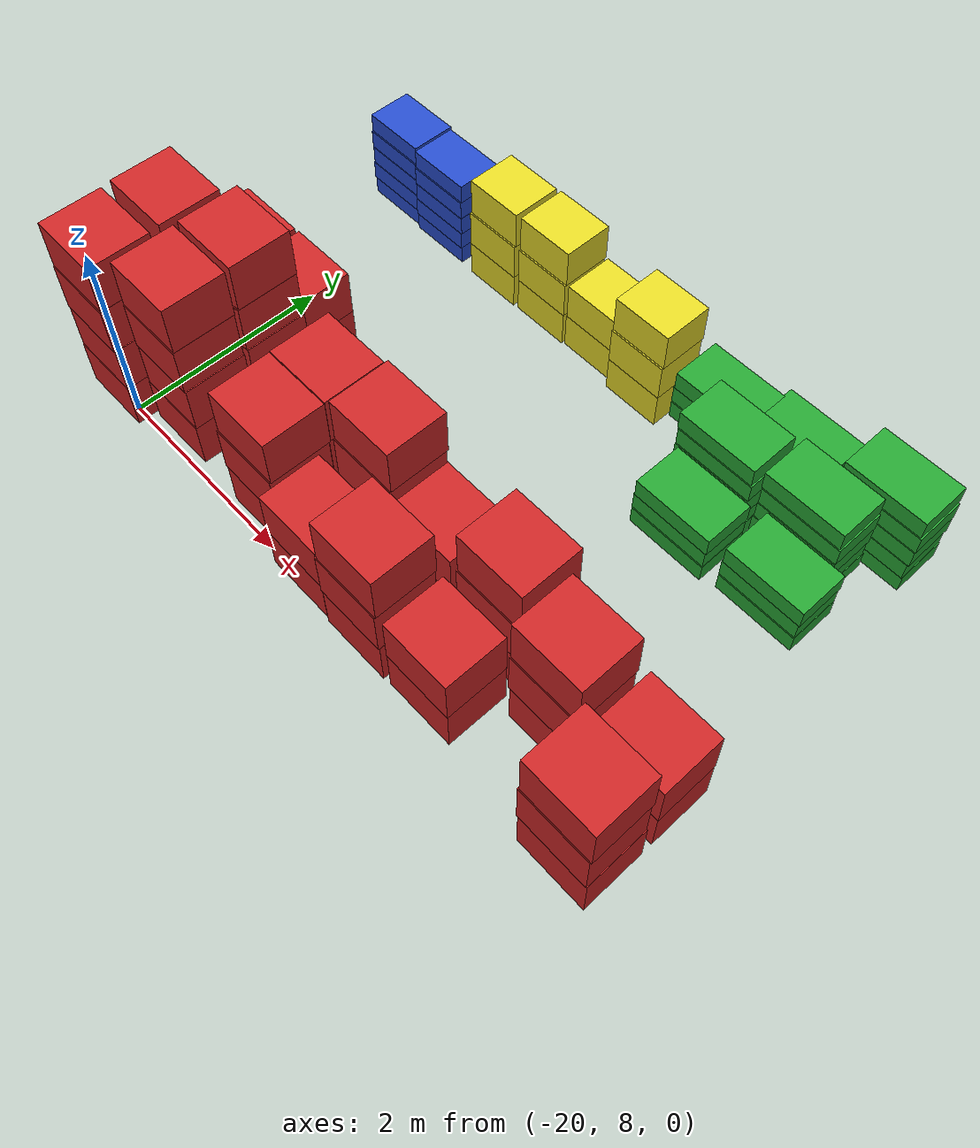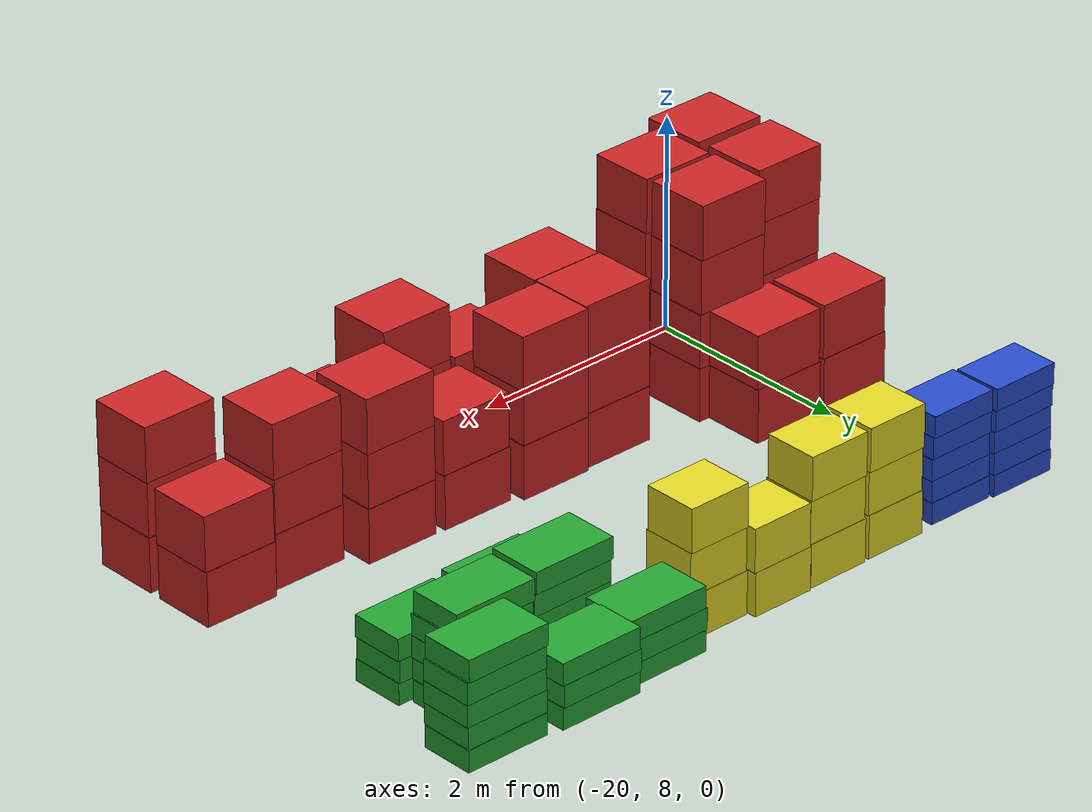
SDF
<sdf version="1.4">
 <model name="factory_baggage_group_A">
  <model name="baggage_A_x3_4">
   <model name="baggage_A_0">
    <static>1</static>
    <link name="link">
     <collision name="collision"><geometry><box><size>0.7 0.6 0.5</size></box></geometry></collision>
     <visual name="visual">
      <geometry><box><size>0.7 0.6 0.5</size></box></geometry>
      <material>
       <script><uri>file://media/materials/scripts/gazebo.material</uri><name>Gazebo/Red</name></script>
      </material>
     </visual>
    </link>
    <pose>0 0 0.25 0 -0 0</pose>
   </model>
   <model name="baggage_A_1">
    <static>1</static>
    <link name="link">
     <collision name="collision"><geometry><box><size>0.7 0.6 0.5</size></box></geometry></collision>
     <visual name="visual">
      <geometry><box><size>0.7 0.6 0.5</size></box></geometry>
      <material>
       <script><uri>file://media/materials/scripts/gazebo.material</uri><name>Gazebo/Red</name></script>
      </material>
     </visual>
    </link>
    <pose>-0.006 -0.0077 0.75 0 -0 0</pose>
   </model>
   <model name="baggage_A_2">
    <static>1</static>
    <link name="link">
     <collision name="collision"><geometry><box><size>0.7 0.6 0.5</size></box></geometry></collision>
     <visual name="visual">
      <geometry><box><size>0.7 0.6 0.5</size></box></geometry>
      <material>
       <script><uri>file://media/materials/scripts/gazebo.material</uri><name>Gazebo/Red</name></script>
      </material>
     </visual>
    </link>
    <pose>0.0045 0.0005 1.25 0 -0 0</pose>
   </model>
   <pose>-14.4326 8.09505 0 0 -0 0</pose>
  </model>
  <model name="baggage_A_x3_5">
   <model name="baggage_A_0">
    <static>1</static>
    <link name="link">
     <collision name="collision"><geometry><box><size>0.7 0.6 0.5</size></box></geometry></collision>
     <visual name="visual">
      <geometry><box><size>0.7 0.6 0.5</size></box></geometry>
      <material>
       <script><uri>file://media/materials/scripts/gazebo.material</uri><name>Gazebo/Red</name></script>
      </material>
     </visual>
    </link>
    <pose>0 0 0.25 0 -0 0</pose>
   </model>
   <model name="baggage_A_1">
    <static>1</static>
    <link name="link">
     <collision name="collision"><geometry><box><size>0.7 0.6 0.5</size></box></geometry></collision>
     <visual name="visual">
      <geometry><box><size>0.7 0.6 0.5</size></box></geometry>
      <material>
       <script><uri>file://media/materials/scripts/gazebo.material</uri><name>Gazebo/Red</name></script>
      </material>
     </visual>
    </link>
    <pose>-0.006 -0.0077 0.75 0 -0 0</pose>
   </model>
   <model name="baggage_A_2">
    <static>1</static>
    <link name="link">
     <collision name="collision"><geometry><box><size>0.7 0.6 0.5</size></box></geometry></collision>
     <visual name="visual">
      <geometry><box><size>0.7 0.6 0.5</size></box></geometry>
      <material>
       <script><uri>file://media/materials/scripts/gazebo.material</uri><name>Gazebo/Red</name></script>
      </material>
     </visual>
    </link>
    <pose>0.0045 0.0005 1.25 0 -0 0</pose>
   </model>
   <pose>-15.1941 8.72762 0 0 -0 0</pose>
  </model>
  <model name="baggage_A_x2_5">
   <model name="baggage_A_0">
    <static>1</static>
    <link name="link">
     <collision name="collision"><geometry><box><size>0.7 0.6 0.5</size></box></geometry></collision>
     <visual name="visual">
      <geometry><box><size>0.7 0.6 0.5</size></box></geometry>
      <material>
       <script><uri>file://media/materials/scripts/gazebo.material</uri><name>Gazebo/Red</name></script>
      </material>
     </visual>
    </link>
    <pose>0 0 0.25 0 -0 0</pose>
   </model>
   <model name="baggage_A_1">
    <static>1</static>
    <link name="link">
     <collision name="collision"><geometry><box><size>0.7 0.6 0.5</size></box></geometry></collision>
     <visual name="visual">
      <geometry><box><size>0.7 0.6 0.5</size></box></geometry>
      <material>
       <script><uri>file://media/materials/scripts/gazebo.material</uri><name>Gazebo/Red</name></script>
      </material>
     </visual>
    </link>
    <pose>0.0063 -0.0062 0.75 0 -0 0</pose>
   </model>
   <pose>-14.4327 8.8006 0 0 -0 0</pose>
  </model>
  <model name="baggage_A_x4_5">
   <model name="baggage_A_0">
    <static>1</static>
    <link name="link">
     <collision name="collision"><geometry><box><size>0.7 0.6 0.5</size></box></geometry></collision>
     <visual name="visual">
      <geometry><box><size>0.7 0.6 0.5</size></box></geometry>
      <material>
       <script><uri>file://media/materials/scripts/gazebo.material</uri><name>Gazebo/Red</name></script>
      </material>
     </visual>
    </link>
    <pose>0 0 0.25 0 -0 0</pose>
   </model>
   <model name="baggage_A_1">
    <static>1</static>
    <link name="link">
     <collision name="collision"><geometry><box><size>0.7 0.6 0.5</size></box></geometry></collision>
     <visual name="visual">
      <geometry><box><size>0.7 0.6 0.5</size></box></geometry>
      <material>
       <script><uri>file://media/materials/scripts/gazebo.material</uri><name>Gazebo/Red</name></script>
      </material>
     </visual>
    </link>
    <pose>0.0053 0.0033 0.75 0 -0 0</pose>
   </model>
   <model name="baggage_A_2">
    <static>1</static>
    <link name="link">
     <collision name="collision"><geometry><box><size>0.7 0.6 0.5</size></box></geometry></collision>
     <visual name="visual">
      <geometry><box><size>0.7 0.6 0.5</size></box></geometry>
      <material>
       <script><uri>file://media/materials/scripts/gazebo.material</uri><name>Gazebo/Red</name></script>
      </material>
     </visual>
    </link>
    <pose>-0.0056 -0.0003 1.25 0 -0 0</pose>
   </model>
   <model name="baggage_A_3">
    <static>1</static>
    <link name="link">
     <collision name="collision"><geometry><box><size>0.7 0.6 0.5</size></box></geometry></collision>
     <visual name="visual">
      <geometry><box><size>0.7 0.6 0.5</size></box></geometry>
      <material>
       <script><uri>file://media/materials/scripts/gazebo.material</uri><name>Gazebo/Red</name></script>
      </material>
     </visual>
    </link>
    <pose>-0.0098 0.0065 1.75 0 -0 0</pose>
   </model>
   <pose>-20.2142 8.20869 0 0 -0 0</pose>
  </model>
  <model name="baggage_A_x4_6">
   <model name="baggage_A_0">
    <static>1</static>
    <link name="link">
     <collision name="collision"><geometry><box><size>0.7 0.6 0.5</size></box></geometry></collision>
     <visual name="visual">
      <geometry><box><size>0.7 0.6 0.5</size></box></geometry>
      <material>
       <script><uri>file://media/materials/scripts/gazebo.material</uri><name>Gazebo/Red</name></script>
      </material>
     </visual>
    </link>
    <pose>0 0 0.25 0 -0 0</pose>
   </model>
   <model name="baggage_A_1">
    <static>1</static>
    <link name="link">
     <collision name="collision"><geometry><box><size>0.7 0.6 0.5</size></box></geometry></collision>
     <visual name="visual">
      <geometry><box><size>0.7 0.6 0.5</size></box></geometry>
      <material>
       <script><uri>file://media/materials/scripts/gazebo.material</uri><name>Gazebo/Red</name></script>
      </material>
     </visual>
    </link>
    <pose>0.0053 0.0033 0.75 0 -0 0</pose>
   </model>
   <model name="baggage_A_2">
    <static>1</static>
    <link name="link">
     <collision name="collision"><geometry><box><size>0.7 0.6 0.5</size></box></geometry></collision>
     <visual name="visual">
      <geometry><box><size>0.7 0.6 0.5</size></box></geometry>
      <material>
       <script><uri>file://media/materials/scripts/gazebo.material</uri><name>Gazebo/Red</name></script>
      </material>
     </visual>
    </link>
    <pose>-0.0056 -0.0003 1.25 0 -0 0</pose>
   </model>
   <model name="baggage_A_3">
    <static>1</static>
    <link name="link">
     <collision name="collision"><geometry><box><size>0.7 0.6 0.5</size></box></geometry></collision>
     <visual name="visual">
      <geometry><box><size>0.7 0.6 0.5</size></box></geometry>
      <material>
       <script><uri>file://media/materials/scripts/gazebo.material</uri><name>Gazebo/Red</name></script>
      </material>
     </visual>
    </link>
    <pose>-0.0098 0.0065 1.75 0 -0 0</pose>
   </model>
   <pose>-19.4592 8.39699 0 0 -0 0</pose>
  </model>
  <model name="baggage_A_x4_7">
   <model name="baggage_A_0">
    <static>1</static>
    <link name="link">
     <collision name="collision"><geometry><box><size>0.7 0.6 0.5</size></box></geometry></collision>
     <visual name="visual">
      <geometry><box><size>0.7 0.6 0.5</size></box></geometry>
      <material>
       <script><uri>file://media/materials/scripts/gazebo.material</uri><name>Gazebo/Red</name></script>
      </material>
     </visual>
    </link>
    <pose>0 0 0.25 0 -0 0</pose>
   </model>
   <model name="baggage_A_1">
    <static>1</static>
    <link name="link">
     <collision name="collision"><geometry><box><size>0.7 0.6 0.5</size></box></geometry></collision>
     <visual name="visual">
      <geometry><box><size>0.7 0.6 0.5</size></box></geometry>
      <material>
       <script><uri>file://media/materials/scripts/gazebo.material</uri><name>Gazebo/Red</name></script>
      </material>
     </visual>
    </link>
    <pose>0.0053 0.0033 0.75 0 -0 0</pose>
   </model>
   <model name="baggage_A_2">
    <static>1</static>
    <link name="link">
     <collision name="collision"><geometry><box><size>0.7 0.6 0.5</size></box></geometry></collision>
     <visual name="visual">
      <geometry><box><size>0.7 0.6 0.5</size></box></geometry>
      <material>
       <script><uri>file://media/materials/scripts/gazebo.material</uri><name>Gazebo/Red</name></script>
      </material>
     </visual>
    </link>
    <pose>-0.0056 -0.0003 1.25 0 -0 0</pose>
   </model>
   <model name="baggage_A_3">
    <static>1</static>
    <link name="link">
     <collision name="collision"><geometry><box><size>0.7 0.6 0.5</size></box></geometry></collision>
     <visual name="visual">
      <geometry><box><size>0.7 0.6 0.5</size></box></geometry>
      <material>
       <script><uri>file://media/materials/scripts/gazebo.material</uri><name>Gazebo/Red</name></script>
      </material>
     </visual>
    </link>
    <pose>-0.0098 0.0065 1.75 0 -0 0</pose>
   </model>
   <pose>-19.4743 9.04443 0 0 -0 0</pose>
  </model>
  <model name="baggage_A_x4_8">
   <model name="baggage_A_0">
    <static>1</static>
    <link name="link">
     <collision name="collision"><geometry><box><size>0.7 0.6 0.5</size></box></geometry></collision>
     <visual name="visual">
      <geometry><box><size>0.7 0.6 0.5</size></box></geometry>
      <material>
       <script><uri>file://media/materials/scripts/gazebo.material</uri><name>Gazebo/Red</name></script>
      </material>
     </visual>
    </link>
    <pose>0 0 0.25 0 -0 0</pose>
   </model>
   <model name="baggage_A_1">
    <static>1</static>
    <link name="link">
     <collision name="collision"><geometry><box><size>0.7 0.6 0.5</size></box></geometry></collision>
     <visual name="visual">
      <geometry><box><size>0.7 0.6 0.5</size></box></geometry>
      <material>
       <script><uri>file://media/materials/scripts/gazebo.material</uri><name>Gazebo/Red</name></script>
      </material>
     </visual>
    </link>
    <pose>0.0053 0.0033 0.75 0 -0 0</pose>
   </model>
   <model name="baggage_A_2">
    <static>1</static>
    <link name="link">
     <collision name="collision"><geometry><box><size>0.7 0.6 0.5</size></box></geometry></collision>
     <visual name="visual">
      <geometry><box><size>0.7 0.6 0.5</size></box></geometry>
      <material>
       <script><uri>file://media/materials/scripts/gazebo.material</uri><name>Gazebo/Red</name></script>
      </material>
     </visual>
    </link>
    <pose>-0.0056 -0.0003 1.25 0 -0 0</pose>
   </model>
   <model name="baggage_A_3">
    <static>1</static>
    <link name="link">
     <collision name="collision"><geometry><box><size>0.7 0.6 0.5</size></box></geometry></collision>
     <visual name="visual">
      <geometry><box><size>0.7 0.6 0.5</size></box></geometry>
      <material>
       <script><uri>file://media/materials/scripts/gazebo.material</uri><name>Gazebo/Red</name></script>
      </material>
     </visual>
    </link>
    <pose>-0.0098 0.0065 1.75 0 -0 0</pose>
   </model>
   <pose>-20.2342 8.90723 0 0 -0 0</pose>
  </model>
  <model name="baggage_A_x2_6">
   <model name="baggage_A_0">
    <static>1</static>
    <link name="link">
     <collision name="collision"><geometry><box><size>0.7 0.6 0.5</size></box></geometry></collision>
     <visual name="visual">
      <geometry><box><size>0.7 0.6 0.5</size></box></geometry>
      <material>
       <script><uri>file://media/materials/scripts/gazebo.material</uri><name>Gazebo/Red</name></script>
      </material>
     </visual>
    </link>
    <pose>0 0 0.25 0 -0 0</pose>
   </model>
   <model name="baggage_A_1">
    <static>1</static>
    <link name="link">
     <collision name="collision"><geometry><box><size>0.7 0.6 0.5</size></box></geometry></collision>
     <visual name="visual">
      <geometry><box><size>0.7 0.6 0.5</size></box></geometry>
      <material>
       <script><uri>file://media/materials/scripts/gazebo.material</uri><name>Gazebo/Red</name></script>
      </material>
     </visual>
    </link>
    <pose>0.0063 -0.0062 0.75 0 -0 0</pose>
   </model>
   <pose>-20.3334 9.61634 0 0 -0 0</pose>
  </model>
  <model name="baggage_A_x2_7">
   <model name="baggage_A_0">
    <static>1</static>
    <link name="link">
     <collision name="collision"><geometry><box><size>0.7 0.6 0.5</size></box></geometry></collision>
     <visual name="visual">
      <geometry><box><size>0.7 0.6 0.5</size></box></geometry>
      <material>
       <script><uri>file://media/materials/scripts/gazebo.material</uri><name>Gazebo/Red</name></script>
      </material>
     </visual>
    </link>
    <pose>0 0 0.25 0 -0 0</pose>
   </model>
   <model name="baggage_A_1">
    <static>1</static>
    <link name="link">
     <collision name="collision"><geometry><box><size>0.7 0.6 0.5</size></box></geometry></collision>
     <visual name="visual">
      <geometry><box><size>0.7 0.6 0.5</size></box></geometry>
      <material>
       <script><uri>file://media/materials/scripts/gazebo.material</uri><name>Gazebo/Red</name></script>
      </material>
     </visual>
    </link>
    <pose>0.0063 -0.0062 0.75 0 -0 0</pose>
   </model>
   <pose>-19.582 9.62279 0 0 -0 0</pose>
  </model>
  <model name="baggage_B_x3_10">
   <model name="baggage_B_0">
    <static>1</static>
    <link name="link">
     <collision name="collision"><geometry><box><size>0.65 0.45 0.2</size></box></geometry></collision>
     <visual name="visual">
      <geometry><box><size>0.65 0.45 0.2</size></box></geometry>
      <material>
       <script><uri>file://media/materials/scripts/gazebo.material</uri><name>Gazebo/Blue</name></script>
      </material>
     </visual>
    </link>
    <pose>0 0 0.1 0 -0 0</pose>
   </model>
   <model name="baggage_B_1">
    <static>1</static>
    <link name="link">
     <collision name="collision"><geometry><box><size>0.65 0.45 0.2</size></box></geometry></collision>
     <visual name="visual">
      <geometry><box><size>0.65 0.45 0.2</size></box></geometry>
      <material>
       <script><uri>file://media/materials/scripts/gazebo.material</uri><name>Gazebo/Blue</name></script>
      </material>
     </visual>
    </link>
    <pose>0.0028 -0.0086 0.3 0 -0 0</pose>
   </model>
   <model name="baggage_B_2">
    <static>1</static>
    <link name="link">
     <collision name="collision"><geometry><box><size>0.65 0.45 0.2</size></box></geometry></collision>
     <visual name="visual">
      <geometry><box><size>0.65 0.45 0.2</size></box></geometry>
      <material>
       <script><uri>file://media/materials/scripts/gazebo.material</uri><name>Gazebo/Blue</name></script>
      </material>
     </visual>
    </link>
    <pose>0.0092 0.006 0.4 0 -0 0</pose>
   </model>
   <pose>-17.2936 8.3443 0 0 -0 0</pose>
  </model>
  <model name="baggage_B_x5_7">
   <model name="baggage_B_0">
    <static>1</static>
    <link name="link">
     <collision name="collision"><geometry><box><size>0.65 0.45 0.2</size></box></geometry></collision>
     <visual name="visual">
      <geometry><box><size>0.65 0.45 0.2</size></box></geometry>
      <material>
       <script><uri>file://media/materials/scripts/gazebo.material</uri><name>Gazebo/Blue</name></script>
      </material>
     </visual>
    </link>
    <pose>0 0 0.1 0 -0 0</pose>
   </model>
   <model name="baggage_B_1">
    <static>1</static>
    <link name="link">
     <collision name="collision"><geometry><box><size>0.65 0.45 0.2</size></box></geometry></collision>
     <visual name="visual">
      <geometry><box><size>0.65 0.45 0.2</size></box></geometry>
      <material>
       <script><uri>file://media/materials/scripts/gazebo.material</uri><name>Gazebo/Blue</name></script>
      </material>
     </visual>
    </link>
    <pose>-0.0014 -0.0091 0.3 0 -0 0</pose>
   </model>
   <model name="baggage_B_2">
    <static>1</static>
    <link name="link">
     <collision name="collision"><geometry><box><size>0.65 0.45 0.2</size></box></geometry></collision>
     <visual name="visual">
      <geometry><box><size>0.65 0.45 0.2</size></box></geometry>
      <material>
       <script><uri>file://media/materials/scripts/gazebo.material</uri><name>Gazebo/Blue</name></script>
      </material>
     </visual>
    </link>
    <pose>0.0076 -0.0066 0.5 0 -0 0</pose>
   </model>
   <model name="baggage_B_3">
    <static>1</static>
    <link name="link">
     <collision name="collision"><geometry><box><size>0.65 0.45 0.2</size></box></geometry></collision>
     <visual name="visual">
      <geometry><box><size>0.65 0.45 0.2</size></box></geometry>
      <material>
       <script><uri>file://media/materials/scripts/gazebo.material</uri><name>Gazebo/Blue</name></script>
      </material>
     </visual>
    </link>
    <pose>0 -0.0032 0.7 0 -0 0</pose>
   </model>
   <model name="baggage_B_4">
    <static>1</static>
    <link name="link">
     <collision name="collision"><geometry><box><size>0.65 0.45 0.2</size></box></geometry></collision>
     <visual name="visual">
      <geometry><box><size>0.65 0.45 0.2</size></box></geometry>
      <material>
       <script><uri>file://media/materials/scripts/gazebo.material</uri><name>Gazebo/Blue</name></script>
      </material>
     </visual>
    </link>
    <pose>0.0023 0.0073 0.9 0 -0 0</pose>
   </model>
   <pose>-20.3574 11.6061 0 0 -0 0</pose>
  </model>
  <model name="baggage_B_x5_8">
   <model name="baggage_B_0">
    <static>1</static>
    <link name="link">
     <collision name="collision"><geometry><box><size>0.65 0.45 0.2</size></box></geometry></collision>
     <visual name="visual">
      <geometry><box><size>0.65 0.45 0.2</size></box></geometry>
      <material>
       <script><uri>file://media/materials/scripts/gazebo.material</uri><name>Gazebo/Blue</name></script>
      </material>
     </visual>
    </link>
    <pose>0 0 0.1 0 -0 0</pose>
   </model>
   <model name="baggage_B_1">
    <static>1</static>
    <link name="link">
     <collision name="collision"><geometry><box><size>0.65 0.45 0.2</size></box></geometry></collision>
     <visual name="visual">
      <geometry><box><size>0.65 0.45 0.2</size></box></geometry>
      <material>
       <script><uri>file://media/materials/scripts/gazebo.material</uri><name>Gazebo/Blue</name></script>
      </material>
     </visual>
    </link>
    <pose>-0.0014 -0.0091 0.3 0 -0 0</pose>
   </model>
   <model name="baggage_B_2">
    <static>1</static>
    <link name="link">
     <collision name="collision"><geometry><box><size>0.65 0.45 0.2</size></box></geometry></collision>
     <visual name="visual">
      <geometry><box><size>0.65 0.45 0.2</size></box></geometry>
      <material>
       <script><uri>file://media/materials/scripts/gazebo.material</uri><name>Gazebo/Blue</name></script>
      </material>
     </visual>
    </link>
    <pose>0.0076 -0.0066 0.5 0 -0 0</pose>
   </model>
   <model name="baggage_B_3">
    <static>1</static>
    <link name="link">
     <collision name="collision"><geometry><box><size>0.65 0.45 0.2</size></box></geometry></collision>
     <visual name="visual">
      <geometry><box><size>0.65 0.45 0.2</size></box></geometry>
      <material>
       <script><uri>file://media/materials/scripts/gazebo.material</uri><name>Gazebo/Blue</name></script>
      </material>
     </visual>
    </link>
    <pose>0 -0.0032 0.7 0 -0 0</pose>
   </model>
   <model name="baggage_B_4">
    <static>1</static>
    <link name="link">
     <collision name="collision"><geometry><box><size>0.65 0.45 0.2</size></box></geometry></collision>
     <visual name="visual">
      <geometry><box><size>0.65 0.45 0.2</size></box></geometry>
      <material>
       <script><uri>file://media/materials/scripts/gazebo.material</uri><name>Gazebo/Blue</name></script>
      </material>
     </visual>
    </link>
    <pose>0.0023 0.0073 0.9 0 -0 0</pose>
   </model>
   <pose>-19.6809 11.58 0 0 -0 0</pose>
  </model>
  <model name="baggage_D_x5_6">
   <model name="baggage_D_0">
    <static>1</static>
    <link name="link">
     <collision name="collision"><geometry><box><size>0.8 0.5 0.2</size></box></geometry></collision>
     <visual name="visual">
      <geometry><box><size>0.8 0.5 0.2</size></box></geometry>
      <material>
       <script><uri>file://media/materials/scripts/gazebo.material</uri><name>Gazebo/Green</name></script>
      </material>
     </visual>
    </link>
    <pose>0 0 0.1 0 -0 0</pose>
   </model>
   <model name="baggage_D_1">
    <static>1</static>
    <link name="link">
     <collision name="collision"><geometry><box><size>0.8 0.5 0.2</size></box></geometry></collision>
     <visual name="visual">
      <geometry><box><size>0.8 0.5 0.2</size></box></geometry>
      <material>
       <script><uri>file://media/materials/scripts/gazebo.material</uri><name>Gazebo/Green</name></script>
      </material>
     </visual>
    </link>
    <pose>-0.0065 -0.0092 0.3 0 -0 0</pose>
   </model>
   <model name="baggage_D_2">
    <static>1</static>
    <link name="link">
     <collision name="collision"><geometry><box><size>0.8 0.5 0.2</size></box></geometry></collision>
     <visual name="visual">
      <geometry><box><size>0.8 0.5 0.2</size></box></geometry>
      <material>
       <script><uri>file://media/materials/scripts/gazebo.material</uri><name>Gazebo/Green</name></script>
      </material>
     </visual>
    </link>
    <pose>0.005 -0.0052 0.5 0 -0 0</pose>
   </model>
   <model name="baggage_D_3">
    <static>1</static>
    <link name="link">
     <collision name="collision"><geometry><box><size>0.8 0.5 0.2</size></box></geometry></collision>
     <visual name="visual">
      <geometry><box><size>0.8 0.5 0.2</size></box></geometry>
      <material>
       <script><uri>file://media/materials/scripts/gazebo.material</uri><name>Gazebo/Green</name></script>
      </material>
     </visual>
    </link>
    <pose>0.0074 0.0002 0.7 0 -0 0</pose>
   </model>
   <model name="baggage_D_4">
    <static>1</static>
    <link name="link">
     <collision name="collision"><geometry><box><size>0.8 0.5 0.2</size></box></geometry></collision>
     <visual name="visual">
      <geometry><box><size>0.8 0.5 0.2</size></box></geometry>
      <material>
       <script><uri>file://media/materials/scripts/gazebo.material</uri><name>Gazebo/Green</name></script>
      </material>
     </visual>
    </link>
    <pose>-0.006 0.0081 0.9 0 -0 0</pose>
   </model>
   <pose>-14.5839 11.7919 0 0 -0 0</pose>
  </model>
  <model name="baggage_D_x3_4">
   <model name="baggage_D_0">
    <static>1</static>
    <link name="link">
     <collision name="collision"><geometry><box><size>0.8 0.5 0.2</size></box></geometry></collision>
     <visual name="visual">
      <geometry><box><size>0.8 0.5 0.2</size></box></geometry>
      <material>
       <script><uri>file://media/materials/scripts/gazebo.material</uri><name>Gazebo/Green</name></script>
      </material>
     </visual>
    </link>
    <pose>0 0 0.1 0 -0 0</pose>
   </model>
   <model name="baggage_D_1">
    <static>1</static>
    <link name="link">
     <collision name="collision"><geometry><box><size>0.8 0.5 0.2</size></box></geometry></collision>
     <visual name="visual">
      <geometry><box><size>0.8 0.5 0.2</size></box></geometry>
      <material>
       <script><uri>file://media/materials/scripts/gazebo.material</uri><name>Gazebo/Green</name></script>
      </material>
     </visual>
    </link>
    <pose>-0.0056 0.0083 0.3 0 -0 0</pose>
   </model>
   <model name="baggage_D_2">
    <static>1</static>
    <link name="link">
     <collision name="collision"><geometry><box><size>0.8 0.5 0.2</size></box></geometry></collision>
     <visual name="visual">
      <geometry><box><size>0.8 0.5 0.2</size></box></geometry>
      <material>
       <script><uri>file://media/materials/scripts/gazebo.material</uri><name>Gazebo/Green</name></script>
      </material>
     </visual>
    </link>
    <pose>0.0053 0.0057 0.5 0 -0 0</pose>
   </model>
   <pose>-15.5143 11.8281 0 0 -0 0</pose>
  </model>
  <model name="baggage_D_x5_7">
   <model name="baggage_D_0">
    <static>1</static>
    <link name="link">
     <collision name="collision"><geometry><box><size>0.8 0.5 0.2</size></box></geometry></collision>
     <visual name="visual">
      <geometry><box><size>0.8 0.5 0.2</size></box></geometry>
      <material>
       <script><uri>file://media/materials/scripts/gazebo.material</uri><name>Gazebo/Green</name></script>
      </material>
     </visual>
    </link>
    <pose>0 0 0.1 0 -0 0</pose>
   </model>
   <model name="baggage_D_1">
    <static>1</static>
    <link name="link">
     <collision name="collision"><geometry><box><size>0.8 0.5 0.2</size></box></geometry></collision>
     <visual name="visual">
      <geometry><box><size>0.8 0.5 0.2</size></box></geometry>
      <material>
       <script><uri>file://media/materials/scripts/gazebo.material</uri><name>Gazebo/Green</name></script>
      </material>
     </visual>
    </link>
    <pose>-0.0065 -0.0092 0.3 0 -0 0</pose>
   </model>
   <model name="baggage_D_2">
    <static>1</static>
    <link name="link">
     <collision name="collision"><geometry><box><size>0.8 0.5 0.2</size></box></geometry></collision>
     <visual name="visual">
      <geometry><box><size>0.8 0.5 0.2</size></box></geometry>
      <material>
       <script><uri>file://media/materials/scripts/gazebo.material</uri><name>Gazebo/Green</name></script>
      </material>
     </visual>
    </link>
    <pose>0.005 -0.0052 0.5 0 -0 0</pose>
   </model>
   <model name="baggage_D_3">
    <static>1</static>
    <link name="link">
     <collision name="collision"><geometry><box><size>0.8 0.5 0.2</size></box></geometry></collision>
     <visual name="visual">
      <geometry><box><size>0.8 0.5 0.2</size></box></geometry>
      <material>
       <script><uri>file://media/materials/scripts/gazebo.material</uri><name>Gazebo/Green</name></script>
      </material>
     </visual>
    </link>
    <pose>0.0074 0.0002 0.7 0 -0 0</pose>
   </model>
   <model name="baggage_D_4">
    <static>1</static>
    <link name="link">
     <collision name="collision"><geometry><box><size>0.8 0.5 0.2</size></box></geometry></collision>
     <visual name="visual">
      <geometry><box><size>0.8 0.5 0.2</size></box></geometry>
      <material>
       <script><uri>file://media/materials/scripts/gazebo.material</uri><name>Gazebo/Green</name></script>
      </material>
     </visual>
    </link>
    <pose>-0.006 0.0081 0.9 0 -0 0</pose>
   </model>
   <pose>-14.9459 11.2432 0 0 -0 0</pose>
  </model>
  <model name="baggage_A_x2_8">
   <model name="baggage_A_0">
    <static>1</static>
    <link name="link">
     <collision name="collision"><geometry><box><size>0.7 0.6 0.5</size></box></geometry></collision>
     <visual name="visual">
      <geometry><box><size>0.7 0.6 0.5</size></box></geometry>
      <material>
       <script><uri>file://media/materials/scripts/gazebo.material</uri><name>Gazebo/Red</name></script>
      </material>
     </visual>
    </link>
    <pose>0 0 0.25 0 -0 0</pose>
   </model>
   <model name="baggage_A_1">
    <static>1</static>
    <link name="link">
     <collision name="collision"><geometry><box><size>0.7 0.6 0.5</size></box></geometry></collision>
     <visual name="visual">
      <geometry><box><size>0.7 0.6 0.5</size></box></geometry>
      <material>
       <script><uri>file://media/materials/scripts/gazebo.material</uri><name>Gazebo/Red</name></script>
      </material>
     </visual>
    </link>
    <pose>0.0063 -0.0062 0.75 0 -0 0</pose>
   </model>
   <pose>-16.0272 8.22218 0 0 -0 0</pose>
  </model>
  <model name="baggage_A_x3_7">
   <model name="baggage_A_0">
    <static>1</static>
    <link name="link">
     <collision name="collision"><geometry><box><size>0.7 0.6 0.5</size></box></geometry></collision>
     <visual name="visual">
      <geometry><box><size>0.7 0.6 0.5</size></box></geometry>
      <material>
       <script><uri>file://media/materials/scripts/gazebo.material</uri><name>Gazebo/Red</name></script>
      </material>
     </visual>
    </link>
    <pose>0 0 0.25 0 -0 0</pose>
   </model>
   <model name="baggage_A_1">
    <static>1</static>
    <link name="link">
     <collision name="collision"><geometry><box><size>0.7 0.6 0.5</size></box></geometry></collision>
     <visual name="visual">
      <geometry><box><size>0.7 0.6 0.5</size></box></geometry>
      <material>
       <script><uri>file://media/materials/scripts/gazebo.material</uri><name>Gazebo/Red</name></script>
      </material>
     </visual>
    </link>
    <pose>-0.006 -0.0077 0.75 0 -0 0</pose>
   </model>
   <model name="baggage_A_2">
    <static>1</static>
    <link name="link">
     <collision name="collision"><geometry><box><size>0.7 0.6 0.5</size></box></geometry></collision>
     <visual name="visual">
      <geometry><box><size>0.7 0.6 0.5</size></box></geometry>
      <material>
       <script><uri>file://media/materials/scripts/gazebo.material</uri><name>Gazebo/Red</name></script>
      </material>
     </visual>
    </link>
    <pose>0.0045 0.0005 1.25 0 -0 0</pose>
   </model>
   <pose>-15.991 8.92518 0 0 -0 0</pose>
  </model>
  <model name="baggage_A_x3_8">
   <model name="baggage_A_0">
    <static>1</static>
    <link name="link">
     <collision name="collision"><geometry><box><size>0.7 0.6 0.5</size></box></geometry></collision>
     <visual name="visual">
      <geometry><box><size>0.7 0.6 0.5</size></box></geometry>
      <material>
       <script><uri>file://media/materials/scripts/gazebo.material</uri><name>Gazebo/Red</name></script>
      </material>
     </visual>
    </link>
    <pose>0 0 0.25 0 -0 0</pose>
   </model>
   <model name="baggage_A_1">
    <static>1</static>
    <link name="link">
     <collision name="collision"><geometry><box><size>0.7 0.6 0.5</size></box></geometry></collision>
     <visual name="visual">
      <geometry><box><size>0.7 0.6 0.5</size></box></geometry>
      <material>
       <script><uri>file://media/materials/scripts/gazebo.material</uri><name>Gazebo/Red</name></script>
      </material>
     </visual>
    </link>
    <pose>-0.006 -0.0077 0.75 0 -0 0</pose>
   </model>
   <model name="baggage_A_2">
    <static>1</static>
    <link name="link">
     <collision name="collision"><geometry><box><size>0.7 0.6 0.5</size></box></geometry></collision>
     <visual name="visual">
      <geometry><box><size>0.7 0.6 0.5</size></box></geometry>
      <material>
       <script><uri>file://media/materials/scripts/gazebo.material</uri><name>Gazebo/Red</name></script>
      </material>
     </visual>
    </link>
    <pose>0.0045 0.0005 1.25 0 -0 0</pose>
   </model>
   <pose>-16.7953 8.21034 0 0 -0 0</pose>
  </model>
  <model name="baggage_A_x2_9">
   <model name="baggage_A_0">
    <static>1</static>
    <link name="link">
     <collision name="collision"><geometry><box><size>0.7 0.6 0.5</size></box></geometry></collision>
     <visual name="visual">
      <geometry><box><size>0.7 0.6 0.5</size></box></geometry>
      <material>
       <script><uri>file://media/materials/scripts/gazebo.material</uri><name>Gazebo/Red</name></script>
      </material>
     </visual>
    </link>
    <pose>0 0 0.25 0 -0 0</pose>
   </model>
   <model name="baggage_A_1">
    <static>1</static>
    <link name="link">
     <collision name="collision"><geometry><box><size>0.7 0.6 0.5</size></box></geometry></collision>
     <visual name="visual">
      <geometry><box><size>0.7 0.6 0.5</size></box></geometry>
      <material>
       <script><uri>file://media/materials/scripts/gazebo.material</uri><name>Gazebo/Red</name></script>
      </material>
     </visual>
    </link>
    <pose>0.0063 -0.0062 0.75 0 -0 0</pose>
   </model>
   <pose>-16.7834 8.93625 0 0 -0 0</pose>
  </model>
  <model name="baggage_A_x2_10">
   <model name="baggage_A_0">
    <static>1</static>
    <link name="link">
     <collision name="collision"><geometry><box><size>0.7 0.6 0.5</size></box></geometry></collision>
     <visual name="visual">
      <geometry><box><size>0.7 0.6 0.5</size></box></geometry>
      <material>
       <script><uri>file://media/materials/scripts/gazebo.material</uri><name>Gazebo/Red</name></script>
      </material>
     </visual>
    </link>
    <pose>0 0 0.25 0 -0 0</pose>
   </model>
   <model name="baggage_A_1">
    <static>1</static>
    <link name="link">
     <collision name="collision"><geometry><box><size>0.7 0.6 0.5</size></box></geometry></collision>
     <visual name="visual">
      <geometry><box><size>0.7 0.6 0.5</size></box></geometry>
      <material>
       <script><uri>file://media/materials/scripts/gazebo.material</uri><name>Gazebo/Red</name></script>
      </material>
     </visual>
    </link>
    <pose>0.0063 -0.0062 0.75 0 -0 0</pose>
   </model>
   <pose>-17.5337 8.22963 0 0 -0 0</pose>
  </model>
  <model name="baggage_A_x3_9">
   <model name="baggage_A_0">
    <static>1</static>
    <link name="link">
     <collision name="collision"><geometry><box><size>0.7 0.6 0.5</size></box></geometry></collision>
     <visual name="visual">
      <geometry><box><size>0.7 0.6 0.5</size></box></geometry>
      <material>
       <script><uri>file://media/materials/scripts/gazebo.material</uri><name>Gazebo/Red</name></script>
      </material>
     </visual>
    </link>
    <pose>0 0 0.25 0 -0 0</pose>
   </model>
   <model name="baggage_A_1">
    <static>1</static>
    <link name="link">
     <collision name="collision"><geometry><box><size>0.7 0.6 0.5</size></box></geometry></collision>
     <visual name="visual">
      <geometry><box><size>0.7 0.6 0.5</size></box></geometry>
      <material>
       <script><uri>file://media/materials/scripts/gazebo.material</uri><name>Gazebo/Red</name></script>
      </material>
     </visual>
    </link>
    <pose>-0.006 -0.0077 0.75 0 -0 0</pose>
   </model>
   <model name="baggage_A_2">
    <static>1</static>
    <link name="link">
     <collision name="collision"><geometry><box><size>0.7 0.6 0.5</size></box></geometry></collision>
     <visual name="visual">
      <geometry><box><size>0.7 0.6 0.5</size></box></geometry>
      <material>
       <script><uri>file://media/materials/scripts/gazebo.material</uri><name>Gazebo/Red</name></script>
      </material>
     </visual>
    </link>
    <pose>0.0045 0.0005 1.25 0 -0 0</pose>
   </model>
   <pose>-17.5663 9.01031 0 0 -0 0</pose>
  </model>
  <model name="baggage_A_x3_10">
   <model name="baggage_A_0">
    <static>1</static>
    <link name="link">
     <collision name="collision"><geometry><box><size>0.7 0.6 0.5</size></box></geometry></collision>
     <visual name="visual">
      <geometry><box><size>0.7 0.6 0.5</size></box></geometry>
      <material>
       <script><uri>file://media/materials/scripts/gazebo.material</uri><name>Gazebo/Red</name></script>
      </material>
     </visual>
    </link>
    <pose>0 0 0.25 0 -0 0</pose>
   </model>
   <model name="baggage_A_1">
    <static>1</static>
    <link name="link">
     <collision name="collision"><geometry><box><size>0.7 0.6 0.5</size></box></geometry></collision>
     <visual name="visual">
      <geometry><box><size>0.7 0.6 0.5</size></box></geometry>
      <material>
       <script><uri>file://media/materials/scripts/gazebo.material</uri><name>Gazebo/Red</name></script>
      </material>
     </visual>
    </link>
    <pose>-0.006 -0.0077 0.75 0 -0 0</pose>
   </model>
   <model name="baggage_A_2">
    <static>1</static>
    <link name="link">
     <collision name="collision"><geometry><box><size>0.7 0.6 0.5</size></box></geometry></collision>
     <visual name="visual">
      <geometry><box><size>0.7 0.6 0.5</size></box></geometry>
      <material>
       <script><uri>file://media/materials/scripts/gazebo.material</uri><name>Gazebo/Red</name></script>
      </material>
     </visual>
    </link>
    <pose>0.0045 0.0005 1.25 0 -0 0</pose>
   </model>
   <pose>-18.2675 8.36978 0 0 -0 0</pose>
  </model>
  <model name="baggage_A_x3_11">
   <model name="baggage_A_0">
    <static>1</static>
    <link name="link">
     <collision name="collision"><geometry><box><size>0.7 0.6 0.5</size></box></geometry></collision>
     <visual name="visual">
      <geometry><box><size>0.7 0.6 0.5</size></box></geometry>
      <material>
       <script><uri>file://media/materials/scripts/gazebo.material</uri><name>Gazebo/Red</name></script>
      </material>
     </visual>
    </link>
    <pose>0 0 0.25 0 -0 0</pose>
   </model>
   <model name="baggage_A_1">
    <static>1</static>
    <link name="link">
     <collision name="collision"><geometry><box><size>0.7 0.6 0.5</size></box></geometry></collision>
     <visual name="visual">
      <geometry><box><size>0.7 0.6 0.5</size></box></geometry>
      <material>
       <script><uri>file://media/materials/scripts/gazebo.material</uri><name>Gazebo/Red</name></script>
      </material>
     </visual>
    </link>
    <pose>-0.006 -0.0077 0.75 0 -0 0</pose>
   </model>
   <model name="baggage_A_2">
    <static>1</static>
    <link name="link">
     <collision name="collision"><geometry><box><size>0.7 0.6 0.5</size></box></geometry></collision>
     <visual name="visual">
      <geometry><box><size>0.7 0.6 0.5</size></box></geometry>
      <material>
       <script><uri>file://media/materials/scripts/gazebo.material</uri><name>Gazebo/Red</name></script>
      </material>
     </visual>
    </link>
    <pose>0.0045 0.0005 1.25 0 -0 0</pose>
   </model>
   <pose>-18.2751 8.97615 0 0 -0 0</pose>
  </model>
  <model name="baggage_D_x3_5">
   <model name="baggage_D_0">
    <static>1</static>
    <link name="link">
     <collision name="collision"><geometry><box><size>0.8 0.5 0.2</size></box></geometry></collision>
     <visual name="visual">
      <geometry><box><size>0.8 0.5 0.2</size></box></geometry>
      <material>
       <script><uri>file://media/materials/scripts/gazebo.material</uri><name>Gazebo/Green</name></script>
      </material>
     </visual>
    </link>
    <pose>0 0 0.1 0 -0 0</pose>
   </model>
   <model name="baggage_D_1">
    <static>1</static>
    <link name="link">
     <collision name="collision"><geometry><box><size>0.8 0.5 0.2</size></box></geometry></collision>
     <visual name="visual">
      <geometry><box><size>0.8 0.5 0.2</size></box></geometry>
      <material>
       <script><uri>file://media/materials/scripts/gazebo.material</uri><name>Gazebo/Green</name></script>
      </material>
     </visual>
    </link>
    <pose>-0.0056 0.0083 0.3 0 -0 0</pose>
   </model>
   <model name="baggage_D_2">
    <static>1</static>
    <link name="link">
     <collision name="collision"><geometry><box><size>0.8 0.5 0.2</size></box></geometry></collision>
     <visual name="visual">
      <geometry><box><size>0.8 0.5 0.2</size></box></geometry>
      <material>
       <script><uri>file://media/materials/scripts/gazebo.material</uri><name>Gazebo/Green</name></script>
      </material>
     </visual>
    </link>
    <pose>0.0053 0.0057 0.5 0 -0 0</pose>
   </model>
   <pose>-16.2999 11.7299 0 0 -0 0</pose>
  </model>
  <model name="baggage_C_x3_9">
   <model name="baggage_C_0">
    <static>1</static>
    <link name="link">
     <collision name="collision"><geometry><box><size>0.6 0.5 0.4</size></box></geometry></collision>
     <visual name="visual">
      <geometry><box><size>0.6 0.5 0.4</size></box></geometry>
      <material>
       <script><uri>file://media/materials/scripts/gazebo.material</uri><name>Gazebo/Yellow</name></script>
      </material>
     </visual>
    </link>
    <pose>0 0 0.2 0 -0 0</pose>
   </model>
   <model name="baggage_C_1">
    <static>1</static>
    <link name="link">
     <collision name="collision"><geometry><box><size>0.6 0.5 0.4</size></box></geometry></collision>
     <visual name="visual">
      <geometry><box><size>0.6 0.5 0.4</size></box></geometry>
      <material>
       <script><uri>file://media/materials/scripts/gazebo.material</uri><name>Gazebo/Yellow</name></script>
      </material>
     </visual>
    </link>
    <pose>0.0062 -0.0069 0.6 0 -0 0</pose>
   </model>
   <model name="baggage_C_2">
    <static>1</static>
    <link name="link">
     <collision name="collision"><geometry><box><size>0.6 0.5 0.4</size></box></geometry></collision>
     <visual name="visual">
      <geometry><box><size>0.6 0.5 0.4</size></box></geometry>
      <material>
       <script><uri>file://media/materials/scripts/gazebo.material</uri><name>Gazebo/Yellow</name></script>
      </material>
     </visual>
    </link>
    <pose>0.0089 0.0083 1 0 -0 0</pose>
   </model>
   <pose>-17.019 11.546 0 0 -0 0</pose>
  </model>
  <model name="baggage_C_x2_11">
   <model name="baggage_C_0">
    <static>1</static>
    <link name="link">
     <collision name="collision"><geometry><box><size>0.6 0.5 0.4</size></box></geometry></collision>
     <visual name="visual">
      <geometry><box><size>0.6 0.5 0.4</size></box></geometry>
      <material>
       <script><uri>file://media/materials/scripts/gazebo.material</uri><name>Gazebo/Yellow</name></script>
      </material>
     </visual>
    </link>
    <pose>0 0 0.2 0 -0 0</pose>
   </model>
   <model name="baggage_C_1">
    <static>1</static>
    <link name="link">
     <collision name="collision"><geometry><box><size>0.6 0.5 0.4</size></box></geometry></collision>
     <visual name="visual">
      <geometry><box><size>0.6 0.5 0.4</size></box></geometry>
      <material>
       <script><uri>file://media/materials/scripts/gazebo.material</uri><name>Gazebo/Yellow</name></script>
      </material>
     </visual>
    </link>
    <pose>0.0093 -0.002 0.6 0 -0 0</pose>
   </model>
   <pose>-17.6381 11.6205 0 0 -0 0</pose>
  </model>
  <model name="baggage_C_x3_11">
   <model name="baggage_C_0">
    <static>1</static>
    <link name="link">
     <collision name="collision"><geometry><box><size>0.6 0.5 0.4</size></box></geometry></collision>
     <visual name="visual">
      <geometry><box><size>0.6 0.5 0.4</size></box></geometry>
      <material>
       <script><uri>file://media/materials/scripts/gazebo.material</uri><name>Gazebo/Yellow</name></script>
      </material>
     </visual>
    </link>
    <pose>0 0 0.2 0 -0 0</pose>
   </model>
   <model name="baggage_C_1">
    <static>1</static>
    <link name="link">
     <collision name="collision"><geometry><box><size>0.6 0.5 0.4</size></box></geometry></collision>
     <visual name="visual">
      <geometry><box><size>0.6 0.5 0.4</size></box></geometry>
      <material>
       <script><uri>file://media/materials/scripts/gazebo.material</uri><name>Gazebo/Yellow</name></script>
      </material>
     </visual>
    </link>
    <pose>0.0062 -0.0069 0.6 0 -0 0</pose>
   </model>
   <model name="baggage_C_2">
    <static>1</static>
    <link name="link">
     <collision name="collision"><geometry><box><size>0.6 0.5 0.4</size></box></geometry></collision>
     <visual name="visual">
      <geometry><box><size>0.6 0.5 0.4</size></box></geometry>
      <material>
       <script><uri>file://media/materials/scripts/gazebo.material</uri><name>Gazebo/Yellow</name></script>
      </material>
     </visual>
    </link>
    <pose>0.0089 0.0083 1 0 -0 0</pose>
   </model>
   <pose>-18.2581 11.6029 0 0 -0 0</pose>
  </model>
  <model name="baggage_C_x3_12">
   <model name="baggage_C_0">
    <static>1</static>
    <link name="link">
     <collision name="collision"><geometry><box><size>0.6 0.5 0.4</size></box></geometry></collision>
     <visual name="visual">
      <geometry><box><size>0.6 0.5 0.4</size></box></geometry>
      <material>
       <script><uri>file://media/materials/scripts/gazebo.material</uri><name>Gazebo/Yellow</name></script>
      </material>
     </visual>
    </link>
    <pose>0 0 0.2 0 -0 0</pose>
   </model>
   <model name="baggage_C_1">
    <static>1</static>
    <link name="link">
     <collision name="collision"><geometry><box><size>0.6 0.5 0.4</size></box></geometry></collision>
     <visual name="visual">
      <geometry><box><size>0.6 0.5 0.4</size></box></geometry>
      <material>
       <script><uri>file://media/materials/scripts/gazebo.material</uri><name>Gazebo/Yellow</name></script>
      </material>
     </visual>
    </link>
    <pose>0.0062 -0.0069 0.6 0 -0 0</pose>
   </model>
   <model name="baggage_C_2">
    <static>1</static>
    <link name="link">
     <collision name="collision"><geometry><box><size>0.6 0.5 0.4</size></box></geometry></collision>
     <visual name="visual">
      <geometry><box><size>0.6 0.5 0.4</size></box></geometry>
      <material>
       <script><uri>file://media/materials/scripts/gazebo.material</uri><name>Gazebo/Yellow</name></script>
      </material>
     </visual>
    </link>
    <pose>0.0089 0.0083 1 0 -0 0</pose>
   </model>
   <pose>-18.907 11.5914 0 0 -0 0</pose>
  </model>
  <model name="baggage_D_x5_8">
   <model name="baggage_D_0">
    <static>1</static>
    <link name="link">
     <collision name="collision"><geometry><box><size>0.8 0.5 0.2</size></box></geometry></collision>
     <visual name="visual">
      <geometry><box><size>0.8 0.5 0.2</size></box></geometry>
      <material>
       <script><uri>file://media/materials/scripts/gazebo.material</uri><name>Gazebo/Green</name></script>
      </material>
     </visual>
    </link>
    <pose>0 0 0.1 0 -0 0</pose>
   </model>
   <model name="baggage_D_1">
    <static>1</static>
    <link name="link">
     <collision name="collision"><geometry><box><size>0.8 0.5 0.2</size></box></geometry></collision>
     <visual name="visual">
      <geometry><box><size>0.8 0.5 0.2</size></box></geometry>
      <material>
       <script><uri>file://media/materials/scripts/gazebo.material</uri><name>Gazebo/Green</name></script>
      </material>
     </visual>
    </link>
    <pose>-0.0065 -0.0092 0.3 0 -0 0</pose>
   </model>
   <model name="baggage_D_2">
    <static>1</static>
    <link name="link">
     <collision name="collision"><geometry><box><size>0.8 0.5 0.2</size></box></geometry></collision>
     <visual name="visual">
      <geometry><box><size>0.8 0.5 0.2</size></box></geometry>
      <material>
       <script><uri>file://media/materials/scripts/gazebo.material</uri><name>Gazebo/Green</name></script>
      </material>
     </visual>
    </link>
    <pose>0.005 -0.0052 0.5 0 -0 0</pose>
   </model>
   <model name="baggage_D_3">
    <static>1</static>
    <link name="link">
     <collision name="collision"><geometry><box><size>0.8 0.5 0.2</size></box></geometry></collision>
     <visual name="visual">
      <geometry><box><size>0.8 0.5 0.2</size></box></geometry>
      <material>
       <script><uri>file://media/materials/scripts/gazebo.material</uri><name>Gazebo/Green</name></script>
      </material>
     </visual>
    </link>
    <pose>0.0074 0.0002 0.7 0 -0 0</pose>
   </model>
   <model name="baggage_D_4">
    <static>1</static>
    <link name="link">
     <collision name="collision"><geometry><box><size>0.8 0.5 0.2</size></box></geometry></collision>
     <visual name="visual">
      <geometry><box><size>0.8 0.5 0.2</size></box></geometry>
      <material>
       <script><uri>file://media/materials/scripts/gazebo.material</uri><name>Gazebo/Green</name></script>
      </material>
     </visual>
    </link>
    <pose>-0.006 0.0081 0.9 0 -0 0</pose>
   </model>
   <pose>-15.807 11.1873 0 0 -0 0</pose>
  </model>
  <model name="baggage_D_x3_6">
   <model name="baggage_D_0">
    <static>1</static>
    <link name="link">
     <collision name="collision"><geometry><box><size>0.8 0.5 0.2</size></box></geometry></collision>
     <visual name="visual">
      <geometry><box><size>0.8 0.5 0.2</size></box></geometry>
      <material>
       <script><uri>file://media/materials/scripts/gazebo.material</uri><name>Gazebo/Green</name></script>
      </material>
     </visual>
    </link>
    <pose>0 0 0.1 0 -0 0</pose>
   </model>
   <model name="baggage_D_1">
    <static>1</static>
    <link name="link">
     <collision name="collision"><geometry><box><size>0.8 0.5 0.2</size></box></geometry></collision>
     <visual name="visual">
      <geometry><box><size>0.8 0.5 0.2</size></box></geometry>
      <material>
       <script><uri>file://media/materials/scripts/gazebo.material</uri><name>Gazebo/Green</name></script>
      </material>
     </visual>
    </link>
    <pose>-0.0056 0.0083 0.3 0 -0 0</pose>
   </model>
   <model name="baggage_D_2">
    <static>1</static>
    <link name="link">
     <collision name="collision"><geometry><box><size>0.8 0.5 0.2</size></box></geometry></collision>
     <visual name="visual">
      <geometry><box><size>0.8 0.5 0.2</size></box></geometry>
      <material>
       <script><uri>file://media/materials/scripts/gazebo.material</uri><name>Gazebo/Green</name></script>
      </material>
     </visual>
    </link>
    <pose>0.0053 0.0057 0.5 0 -0 0</pose>
   </model>
   <pose>-14.8247 10.7159 0 0 -0 0</pose>
  </model>
  <model name="baggage_D_x3_7">
   <model name="baggage_D_0">
    <static>1</static>
    <link name="link">
     <collision name="collision"><geometry><box><size>0.8 0.5 0.2</size></box></geometry></collision>
     <visual name="visual">
      <geometry><box><size>0.8 0.5 0.2</size></box></geometry>
      <material>
       <script><uri>file://media/materials/scripts/gazebo.material</uri><name>Gazebo/Green</name></script>
      </material>
     </visual>
    </link>
    <pose>0 0 0.1 0 -0 0</pose>
   </model>
   <model name="baggage_D_1">
    <static>1</static>
    <link name="link">
     <collision name="collision"><geometry><box><size>0.8 0.5 0.2</size></box></geometry></collision>
     <visual name="visual">
      <geometry><box><size>0.8 0.5 0.2</size></box></geometry>
      <material>
       <script><uri>file://media/materials/scripts/gazebo.material</uri><name>Gazebo/Green</name></script>
      </material>
     </visual>
    </link>
    <pose>-0.0056 0.0083 0.3 0 -0 0</pose>
   </model>
   <model name="baggage_D_2">
    <static>1</static>
    <link name="link">
     <collision name="collision"><geometry><box><size>0.8 0.5 0.2</size></box></geometry></collision>
     <visual name="visual">
      <geometry><box><size>0.8 0.5 0.2</size></box></geometry>
      <material>
       <script><uri>file://media/materials/scripts/gazebo.material</uri><name>Gazebo/Green</name></script>
      </material>
     </visual>
    </link>
    <pose>0.0053 0.0057 0.5 0 -0 0</pose>
   </model>
   <pose>-15.7573 10.6621 0 0 -0 0</pose>
  </model>
 </model>
</sdf>
